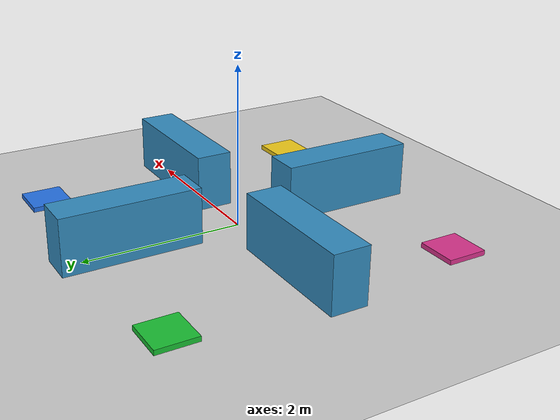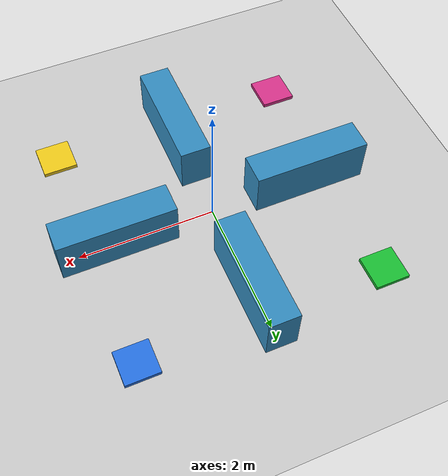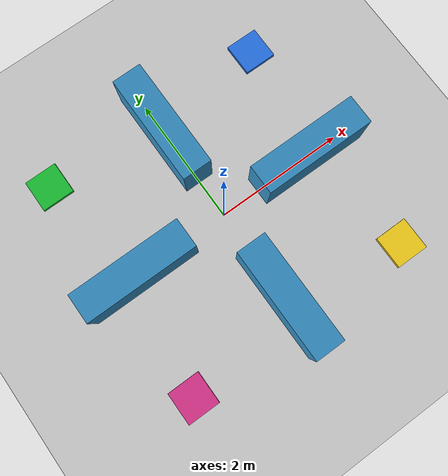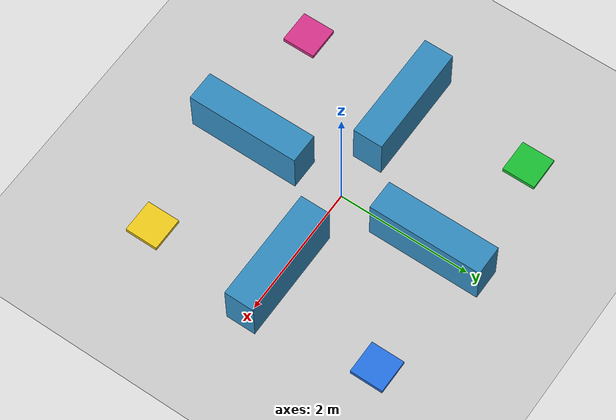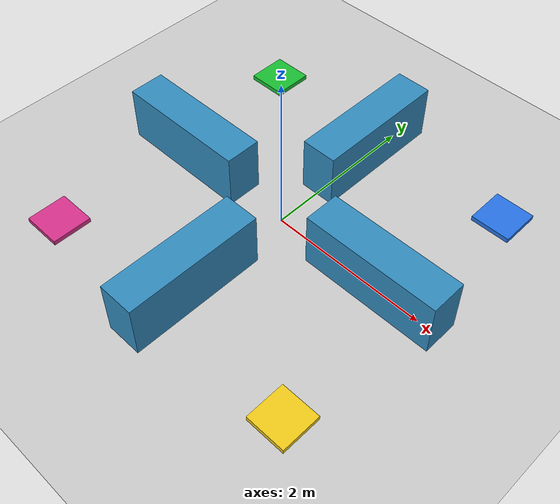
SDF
<sdf version="1.8">
 <world name="default">
  <physics type="ode">
   <real_time_update_rate>1000.0</real_time_update_rate>
   <max_step_size>0.001</max_step_size>
   <real_time_factor>1</real_time_factor>
   <ode>
    <solver>
     <type>quick</type>
     <iters>150</iters>
     <precon_iters>0</precon_iters>
     <sor>1.400000</sor>
     <use_dynamic_moi_rescaling>1</use_dynamic_moi_rescaling>
    </solver>
    <constraints>
     <cfm>0.00001</cfm>
     <erp>0.2</erp>
     <contact_max_correcting_vel>2000.000000</contact_max_correcting_vel>
     <contact_surface_layer>0.01000</contact_surface_layer>
    </constraints>
   </ode>
  </physics>
  <plugin filename="gz-sim-physics-system" name="gz::sim::systems::Physics"/>
  <plugin filename="gz-sim-user-commands-system" name="gz::sim::systems::UserCommands"/>
  <plugin filename="gz-sim-scene-broadcaster-system" name="gz::sim::systems::SceneBroadcaster"/>
  <plugin filename="gz-sim-sensors-system" name="gz::sim::systems::Sensors">
   <render_engine>ogre2</render_engine>
  </plugin>
  <plugin filename="gz-sim-imu-system" name="gz::sim::systems::Imu"/>
  <include><uri>https://fuel.gazebosim.org/1.0/OpenRobotics/models/Ground Plane</uri></include>
  <include><uri>https://fuel.gazebosim.org/1.0/OpenRobotics/models/Sun</uri></include>
  <model name="arm_n">
   <static>true</static>
   <pose>0.000 1.450 0.350 0 0 0.0000</pose>
   <link name="link">
    <collision name="c"><geometry><box><size>0.450 1.700 0.700</size></box></geometry></collision>
    <visual name="v">
     <geometry><box><size>0.450 1.700 0.700</size></box></geometry>
     <material>
      <ambient>0.200 0.550 0.750 1</ambient>
      <diffuse>0.200 0.550 0.750 1</diffuse>
      <specular>0.2 0.2 0.2 1</specular>
     </material>
    </visual>
   </link>
  </model>
  <model name="arm_s">
   <static>true</static>
   <pose>0.000 -1.450 0.350 0 0 0.0000</pose>
   <link name="link">
    <collision name="c"><geometry><box><size>0.450 1.700 0.700</size></box></geometry></collision>
    <visual name="v">
     <geometry><box><size>0.450 1.700 0.700</size></box></geometry>
     <material>
      <ambient>0.200 0.550 0.750 1</ambient>
      <diffuse>0.200 0.550 0.750 1</diffuse>
      <specular>0.2 0.2 0.2 1</specular>
     </material>
    </visual>
   </link>
  </model>
  <model name="arm_e">
   <static>true</static>
   <pose>1.450 0.000 0.350 0 0 0.0000</pose>
   <link name="link">
    <collision name="c"><geometry><box><size>1.700 0.450 0.700</size></box></geometry></collision>
    <visual name="v">
     <geometry><box><size>1.700 0.450 0.700</size></box></geometry>
     <material>
      <ambient>0.200 0.550 0.750 1</ambient>
      <diffuse>0.200 0.550 0.750 1</diffuse>
      <specular>0.2 0.2 0.2 1</specular>
     </material>
    </visual>
   </link>
  </model>
  <model name="arm_w">
   <static>true</static>
   <pose>-1.450 0.000 0.350 0 0 0.0000</pose>
   <link name="link">
    <collision name="c"><geometry><box><size>1.700 0.450 0.700</size></box></geometry></collision>
    <visual name="v">
     <geometry><box><size>1.700 0.450 0.700</size></box></geometry>
     <material>
      <ambient>0.200 0.550 0.750 1</ambient>
      <diffuse>0.200 0.550 0.750 1</diffuse>
      <specular>0.2 0.2 0.2 1</specular>
     </material>
    </visual>
   </link>
  </model>
  <model name="station_nw">
   <static>true</static>
   <pose>-1.800 1.800 0.030 0 0 0.0000</pose>
   <link name="link">
    <collision name="c"><geometry><box><size>0.500 0.500 0.060</size></box></geometry></collision>
    <visual name="v">
     <geometry><box><size>0.500 0.500 0.060</size></box></geometry>
     <material>
      <ambient>0.100 0.750 0.200 1</ambient>
      <diffuse>0.100 0.750 0.200 1</diffuse>
      <specular>0.2 0.2 0.2 1</specular>
     </material>
    </visual>
   </link>
  </model>
  <model name="station_ne">
   <static>true</static>
   <pose>1.800 1.800 0.030 0 0 0.0000</pose>
   <link name="link">
    <collision name="c"><geometry><box><size>0.500 0.500 0.060</size></box></geometry></collision>
    <visual name="v">
     <geometry><box><size>0.500 0.500 0.060</size></box></geometry>
     <material>
      <ambient>0.150 0.450 0.900 1</ambient>
      <diffuse>0.150 0.450 0.900 1</diffuse>
      <specular>0.2 0.2 0.2 1</specular>
     </material>
    </visual>
   </link>
  </model>
  <model name="station_se">
   <static>true</static>
   <pose>1.800 -1.800 0.030 0 0 0.0000</pose>
   <link name="link">
    <collision name="c"><geometry><box><size>0.500 0.500 0.060</size></box></geometry></collision>
    <visual name="v">
     <geometry><box><size>0.500 0.500 0.060</size></box></geometry>
     <material>
      <ambient>0.950 0.800 0.100 1</ambient>
      <diffuse>0.950 0.800 0.100 1</diffuse>
      <specular>0.2 0.2 0.2 1</specular>
     </material>
    </visual>
   </link>
  </model>
  <model name="station_sw">
   <static>true</static>
   <pose>-1.800 -1.800 0.030 0 0 0.0000</pose>
   <link name="link">
    <collision name="c"><geometry><box><size>0.500 0.500 0.060</size></box></geometry></collision>
    <visual name="v">
     <geometry><box><size>0.500 0.500 0.060</size></box></geometry>
     <material>
      <ambient>0.850 0.200 0.550 1</ambient>
      <diffuse>0.850 0.200 0.550 1</diffuse>
      <specular>0.2 0.2 0.2 1</specular>
     </material>
    </visual>
   </link>
  </model>
 </world>
</sdf>
